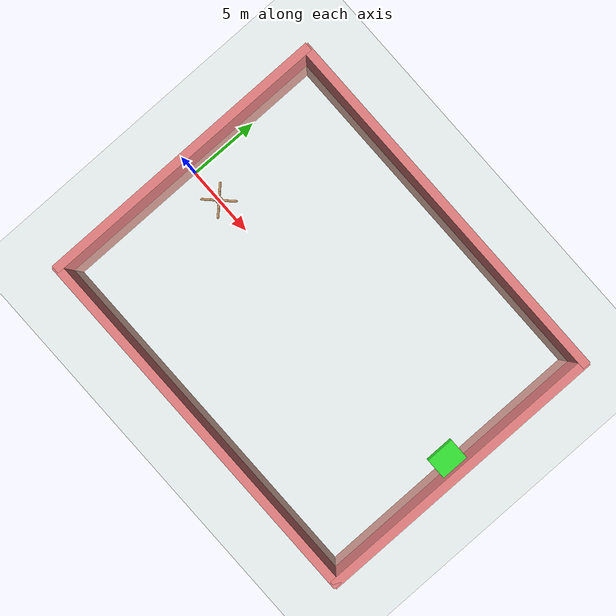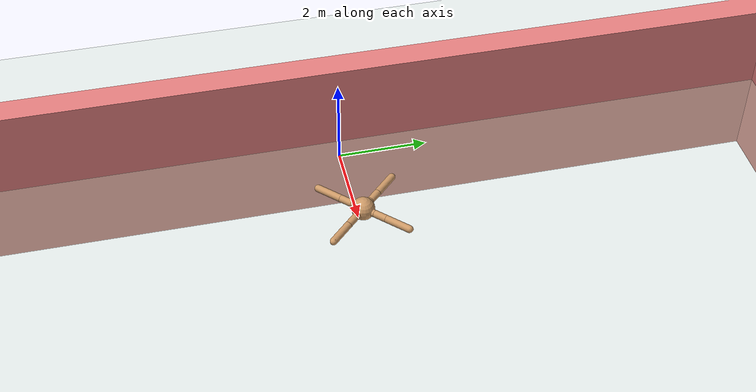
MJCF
<mujoco>
  <compiler inertiafromgeom="true" angle="degree" coordinate="local" />
  <option timestep="0.02" integrator="RK4" />
  <!-- added... -->
  <custom>
    <numeric name="init_qpos" data="0.0 0.0 0.55 1.0 0.0 0.0 0.0 0.0 1.0 0.0 -1.0 0.0 -1.0 0.0 1.0" />
  </custom>
  <!-- ...added... -->
  <default>
    <joint limited="false" armature="0" damping="0" />
    <geom conaffinity="0" condim="3" margin="0" friction="1 0.5 0.5" rgba="0.8 0.6 0.4 1" density="100" />
  </default>
  <asset>
    <texture type="skybox" builtin="gradient" width="100" height="100" rgb1="1 1 1" rgb2="0 0 0" />
    <texture name="texgeom" type="cube" builtin="flat" mark="cross" width="127" height="1278" rgb1="0.8 0.6 0.4" rgb2="0.8 0.6 0.4" markrgb="1 1 1" random="0.01" />
    <texture name="texplane" type="2d" builtin="checker" rgb1="0 0 0" rgb2="0.8 0.8 0.8" width="100" height="100" />
    <material name='MatPlane' texture="texplane" shininess="1" texrepeat="30 30" specular="1"  reflectance="0.5" />
    <material name='geom' texture="texgeom" texuniform="true" />
  </asset>
  <worldbody>

    <light directional="true" cutoff="100" exponent="1" diffuse="1 1 1" specular=".1 .1 .1" pos="0 0 1.3" dir="-0 0 -1.3" />
    <geom name='floor' material="MatPlane" pos='0 0 0' size='40 40 40' type='plane' conaffinity='1' rgba='0.8 0.9 0.8 1' condim='3' />
    <body name="torso" pos="2.5 0 0.75">
      <geom name="torso_geom" type="sphere" size="0.25" pos="0 0 0" />
      <joint name="root" type="free" limited="false" pos="0 0 0" axis="0 0 1" margin="0.01" armature="0" damping="0" />
      <body name="front_left_leg" pos="0 0 0">
        <geom name="aux_1_geom" type="capsule" size="0.08" fromto="0.0 0.0 0.0 0.2 0.2 0.0" />
        <body name="aux_1" pos="0.2 0.2 0">
          <joint name="hip_1" type="hinge" pos="0.0 0.0 0.0" axis="0 0 1" range="-30 30" />
          <geom name="left_leg_geom" type="capsule" size="0.08" fromto="0.0 0.0 0.0 0.2 0.2 0.0" />
          <body pos="0.2 0.2 0">
            <joint name="ankle_1" type="hinge" pos="0.0 0.0 0.0" axis="-1 1 0" range="30 70" />
            <geom name="left_ankle_geom" type="capsule" size="0.08" fromto="0.0 0.0 0.0 0.4 0.4 0.0" />
          </body>
        </body>
      </body>
      <body name="front_right_leg" pos="0 0 0">
        <geom name="aux_2_geom" type="capsule" size="0.08" fromto="0.0 0.0 0.0 -0.2 0.2 0.0" />
        <body name="aux_2" pos="-0.2 0.2 0">
          <joint name="hip_2" type="hinge" pos="0.0 0.0 0.0" axis="0 0 1" range="-30 30" />
          <geom name="right_leg_geom" type="capsule" size="0.08" fromto="0.0 0.0 0.0 -0.2 0.2 0.0" />
          <body pos="-0.2 0.2 0">
            <joint name="ankle_2" type="hinge" pos="0.0 0.0 0.0" axis="1 1 0" range="-70 -30" />
            <geom name="right_ankle_geom" type="capsule" size="0.08" fromto="0.0 0.0 0.0 -0.4 0.4 0.0" />
          </body>
        </body>
      </body>
      <body name="back_leg" pos="0 0 0">
        <geom name="aux_3_geom" type="capsule" size="0.08" fromto="0.0 0.0 0.0 -0.2 -0.2 0.0" />
        <body name="aux_3" pos="-0.2 -0.2 0">
          <joint name="hip_3" type="hinge" pos="0.0 0.0 0.0" axis="0 0 1" range="-30 30" />
          <geom name="back_leg_geom" type="capsule" size="0.08" fromto="0.0 0.0 0.0 -0.2 -0.2 0.0" />
          <body pos="-0.2 -0.2 0">
            <joint name="ankle_3" type="hinge" pos="0.0 0.0 0.0" axis="-1 1 0" range="-70 -30" />
            <geom name="third_ankle_geom" type="capsule" size="0.08" fromto="0.0 0.0 0.0 -0.4 -0.4 0.0" />
          </body>
        </body>
      </body>
      <body name="right_back_leg" pos="0 0 0">
        <geom name="aux_4_geom" type="capsule" size="0.08" fromto="0.0 0.0 0.0 0.2 -0.2 0.0" />
        <body name="aux_4" pos="0.2 -0.2 0">
          <joint name="hip_4" type="hinge" pos="0.0 0.0 0.0" axis="0 0 1" range="-30 30" />
          <geom name="rightback_leg_geom" type="capsule" size="0.08" fromto="0.0 0.0 0.0 0.2 -0.2 0.0" />
          <body pos="0.2 -0.2 0">
            <joint name="ankle_4" type="hinge" pos="0.0 0.0 0.0" axis="1 1 0" range="30 70" />
            <geom name="fourth_ankle_geom" type="capsule" size="0.08" fromto="0.0 0.0 0.0 0.4 -0.4 0.0" />
          </body>
        </body>
      </body>
    </body>

    <!-- borders /-->
    <geom pos="12.5 -10.5 0" conaffinity="1" rgba="0.9 0.5 0.5 1" size="13.5 0.3 2" type="box" condim="3"/> <!-- bottom /-->
    <geom pos="12.5 10.5 0" conaffinity="1" rgba="0.9 0.5 0.5 1" size="13.5 0.3 2" type="box" condim="3"/> <!-- top /-->
    <geom pos="-0.8 0 0" conaffinity="1" rgba="0.9 0.5 0.5 1" size="0.3 10.7 2" type="box" condim="3"/> <!-- left /-->
    <geom pos="25.8 0 0" conaffinity="1" rgba="0.9 0.5 0.5 1" size="0.3 10.7 2" type="box" condim="3"/> <!-- right /-->
    <geom pos="25 0 1" conaffinity="0" rgba="0.2 0.9 0.2 1" size="1 1 0.3" type="box"/>
  </worldbody>
  <actuator>
    <motor joint="hip_4" ctrlrange="-30.0 30.0" ctrllimited="true" />
    <motor joint="ankle_4" ctrlrange="-30.0 30.0" ctrllimited="true" />
    <motor joint="hip_1" ctrlrange="-30.0 30.0" ctrllimited="true" />
    <motor joint="ankle_1" ctrlrange="-30.0 30.0" ctrllimited="true" />
    <motor joint="hip_2" ctrlrange="-30.0 30.0" ctrllimited="true" />
    <motor joint="ankle_2" ctrlrange="-30.0 30.0" ctrllimited="true" />
    <motor joint="hip_3" ctrlrange="-30.0 30.0" ctrllimited="true" />
    <motor joint="ankle_3" ctrlrange="-30.0 30.0" ctrllimited="true" />
  </actuator>
</mujoco>
